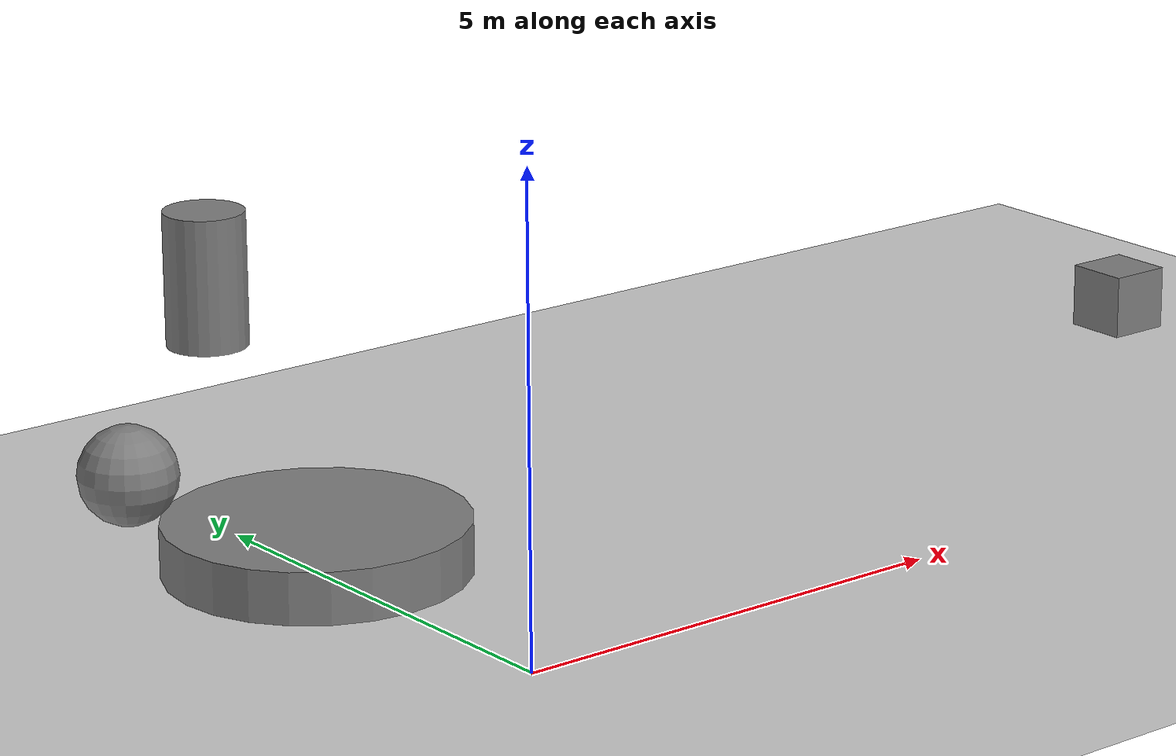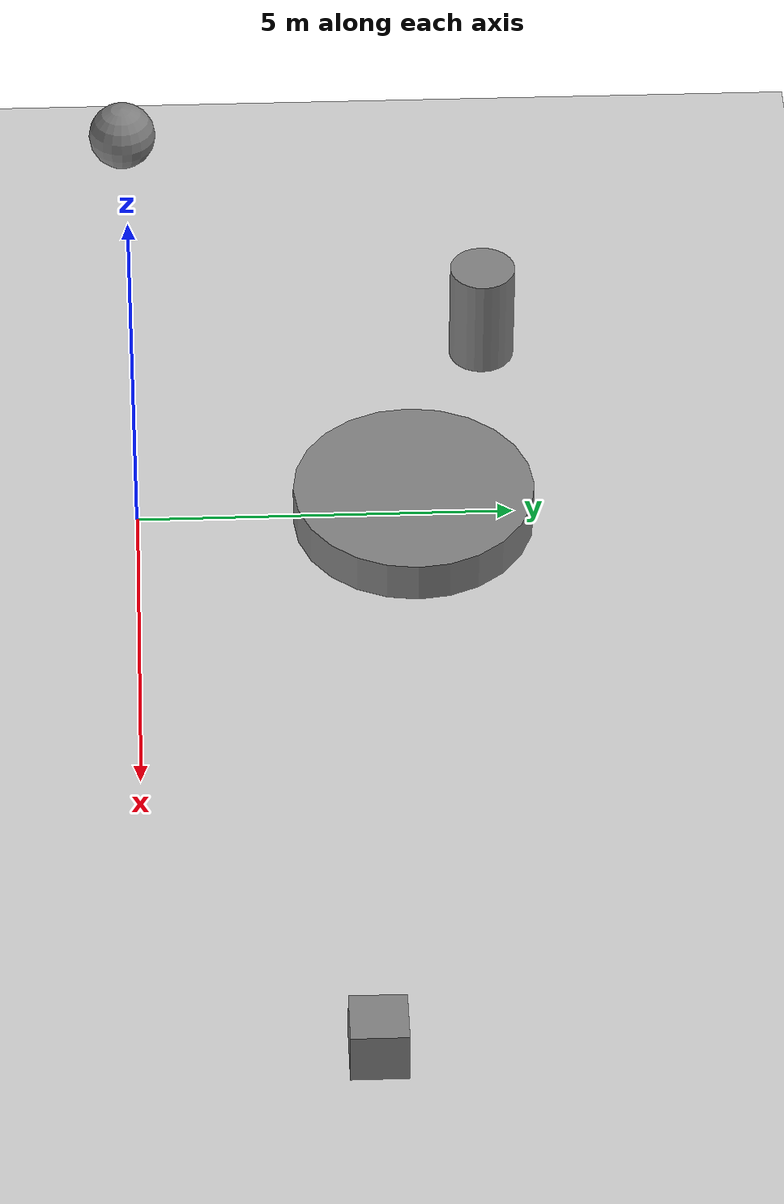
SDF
<?xml version="1.0"?>
<sdf version="1.6">
  <world name="uav6_ugv4_crossing_obstacles">
    <physics name="ode" type="ode">
      <max_step_size>0.001</max_step_size>
      <real_time_update_rate>1000</real_time_update_rate>
    </physics>
    <include>
      <uri>model://sun</uri>
    </include>
    <include>
      <uri>model://ground_plane</uri>
    </include>
    <model name="xgc2_obstacle_flank_ball">
      <static>true</static>
      <pose relative_to="world">-4.472022 -0.092223 3.000002 0.0 0.0 0.0</pose>
      <link name="body">
        <collision name="collision">
          <geometry>
            <sphere>
              <radius>0.45</radius>
            </sphere>
          </geometry>
        </collision>
        <visual name="visual">
          <geometry>
            <sphere>
              <radius>0.45</radius>
            </sphere>
          </geometry>
          <material>
            <ambient>0.5 0.5 0.5 1</ambient>
            <diffuse>0.5 0.5 0.5 1</diffuse>
          </material>
        </visual>
      </link>
    </model>
    <model name="xgc2_obstacle_flank_cylinder">
      <static>true</static>
      <pose relative_to="world">-0.572289 4.569584 3.000002 0.0 0.0 0.0</pose>
      <link name="body">
        <collision name="collision">
          <geometry>
            <cylinder>
              <radius>0.42</radius>
              <length>1.4</length>
            </cylinder>
          </geometry>
        </collision>
        <visual name="visual">
          <geometry>
            <cylinder>
              <radius>0.42</radius>
              <length>1.4</length>
            </cylinder>
          </geometry>
          <material>
            <ambient>0.5 0.5 0.5 1</ambient>
            <diffuse>0.5 0.5 0.5 1</diffuse>
          </material>
        </visual>
      </link>
    </model>
    <model name="xgc2_obstacle_ground_roller">
      <static>true</static>
      <pose relative_to="world">0.085125 3.673977 0.24 0.0 0.0 0.0</pose>
      <link name="body">
        <collision name="collision">
          <geometry>
            <cylinder>
              <radius>1.6</radius>
              <length>0.6</length>
            </cylinder>
          </geometry>
        </collision>
        <visual name="visual">
          <geometry>
            <cylinder>
              <radius>1.6</radius>
              <length>0.6</length>
            </cylinder>
          </geometry>
          <material>
            <ambient>0.5 0.5 0.5 1</ambient>
            <diffuse>0.5 0.5 0.5 1</diffuse>
          </material>
        </visual>
      </link>
    </model>
    <model name="xgc2_obstacle_climb_intruder">
      <static>true</static>
      <pose relative_to="world">10.590142 2.772683 1.115 0.0 0.0 0.0</pose>
      <link name="body">
        <collision name="collision">
          <geometry>
            <box>
              <size>0.7 0.7 0.7</size>
            </box>
          </geometry>
        </collision>
        <visual name="visual">
          <geometry>
            <box>
              <size>0.7 0.7 0.7</size>
            </box>
          </geometry>
          <material>
            <ambient>0.5 0.5 0.5 1</ambient>
            <diffuse>0.5 0.5 0.5 1</diffuse>
          </material>
        </visual>
      </link>
    </model>
  </world>
</sdf>
